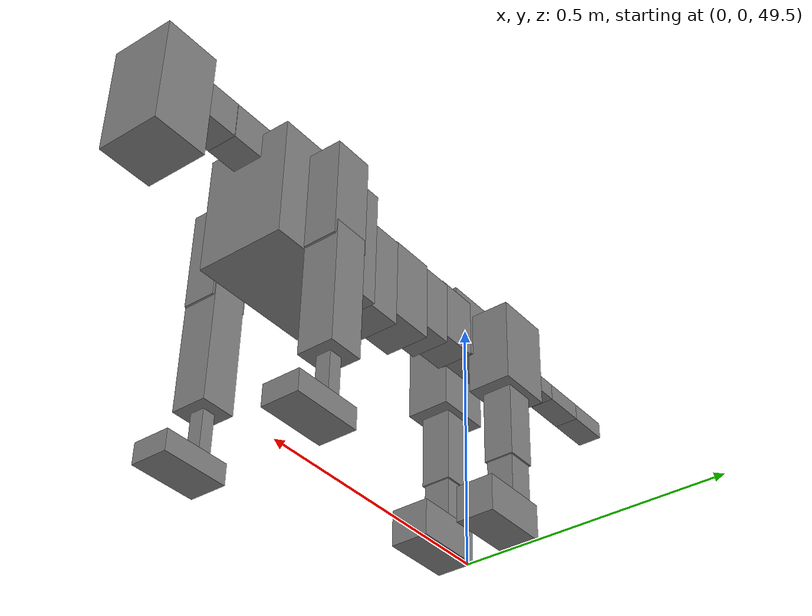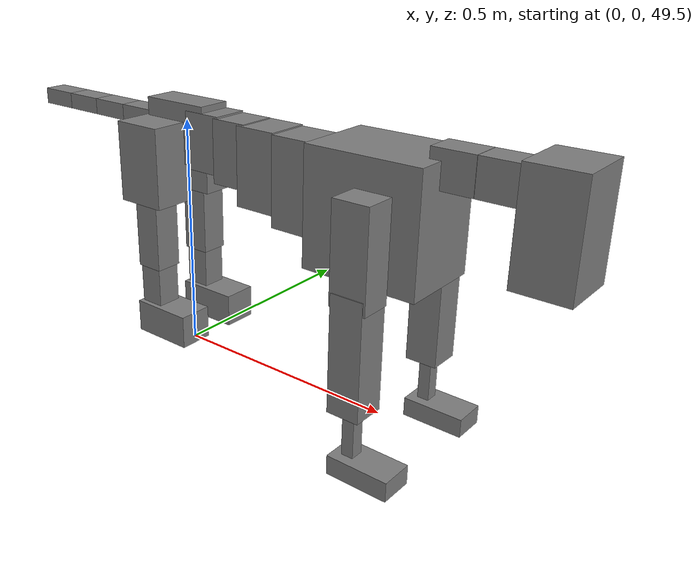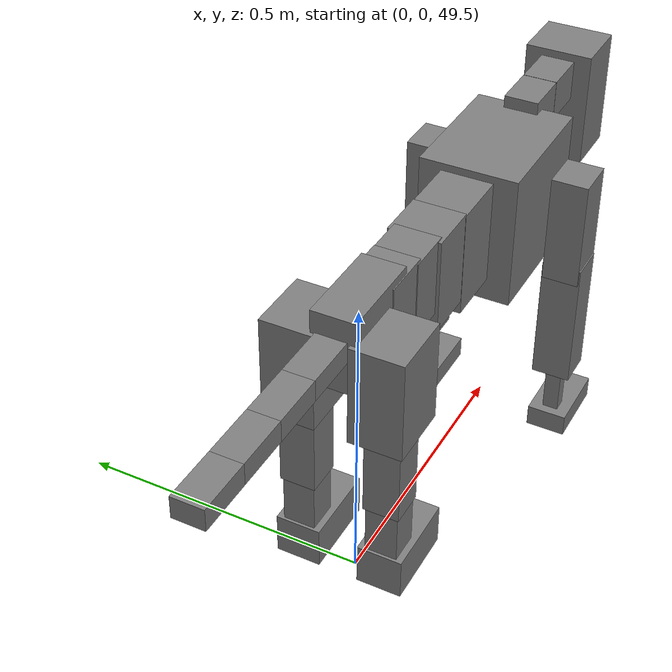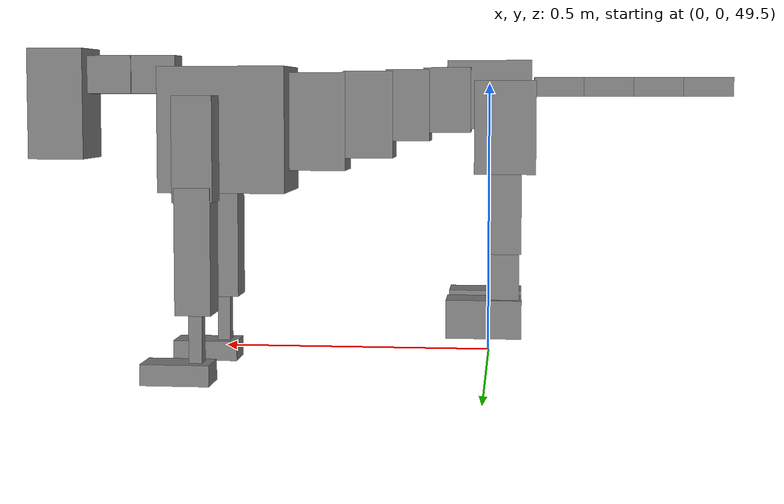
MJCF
<mujoco model="dog">

    <default>
        <joint armature="0.02" stiffness="1" damping="0.2" limited="true"/>
        <geom condim="3" friction="1 0.05 0.05" margin="0.01"/>
        <motor ctrllimited="true" ctrlrange="-1.0 1.0" forcelimited="true" gear="50"/>
    </default>

    <compiler inertiafromgeom="true" angle="radian"/>

    <option timestep="0.016" iterations="50" tolerance="1e-10" solver="Newton" jacobian="dense" cone="pyramidal"/>

    <size nconmax="20000" njmax="60000" nstack="5000000"/>
    <visual>
        <map force="0.1" zfar="30"/>
        <rgba haze="0.15 0.25 0.35 1"/>
        <quality shadowsize="2048"/>
        <global offwidth="800" offheight="800"/>
    </visual>

    <asset>
        <texture type="skybox" builtin="gradient" rgb1="0.3 0.5 0.7" rgb2="0 0 0" width="512" height="512"/>
        <texture name="texplane" type="2d" builtin="checker" rgb1=".2 .3 .4" rgb2=".1 0.15 0.2" width="512" height="512"
                 mark="cross" markrgb=".8 .8 .8"/>
        <texture name="texgeom" type="cube" builtin="flat" mark="cross" width="127" height="1278" rgb1="0.8 0.6 0.4"
                 rgb2="0.8 0.6 0.4" markrgb="1 1 1" random="0.01"/>

        <material name="matplane" reflectance="0.3" texture="texplane" texrepeat="1 1" texuniform="true"/>
        <material name="matgeom" texture="texgeom" texuniform="true" rgba="0.8 0.6 .4 1"/>
    </asset>

    <worldbody>
        <geom name="floor" pos="0 0 0" size="0 0 .25" type="plane" material="matplane" condim="3"/>

        <light directional="false" diffuse=".2 .2 .2" specular="0 0 0" pos="0 0 5" dir="0 0 -1" castshadow="false"/>
        <light mode="targetbodycom" target="torso" directional="false" diffuse=".8 .8 .8" specular="0.3 0.3 0.3"
               pos="0 0 4.0" dir="0 0 -1"/>

        <body name="root" pos="0 0 50">
            <freejoint name="root_1"/>
            <geom type="box" pos="0 0 -0.02" size="0.0774  0.0358  0.063" density="2030"/>

            <body name="spine1" pos="0.054 0 0">
                <joint name="spine1_y" axis="0 1 0" range="0 0.7" limited="true"/>
                <geom type="box" pos="0.02375 0 -0.03" size="0.04375  0.0375  0.05985" density="2030"/>

                <body name="spine2" pos="0.0612 0 0">
                    <joint name="spine2_y" axis="0 1 0" range="-0.15 0.15" limited="true"/>
                    <geom type="box" pos="0.03555  0  -0.04" size="0.04055  0.039  0.06615" density="2030"/>

                    <body name="spine3" pos="0.0730 0 0">
                        <joint name="spine3_y" axis="0 1 0" range="-0.15 0.15" limited="true"/>
                        <geom type="box" pos="0.03555  0  -0.057" size="0.04555  0.0445  0.081" density="2030"/>

                        <body name="spine4" pos="0.0780 0 0">
                            <joint name="spine4_y" axis="0 1 0" range="-0.15 0.15" limited="true"/>
                            <geom type="box" pos="0.05265  0  -0.07" size="0.05265  0.045  0.09135" density="2030"/>

                            <body name="torso" pos="0.1082 0 0">
                                <joint name="torso_y" axis="0 1 0" range="-0.15 0.15" limited="true"/>
                                <geom type="box" pos="0.11925  0  -0.085" size="0.11925  0.085  0.11745"
                                      density="2030"/>

                                <body name="neck1" pos="0.2160  0   0.0180">
                                    <joint name="neck1_y" axis="0 1 0" range="-1.2  -1" limited="true"/>
                                    <geom type="box" pos="0.0423  0  0" size="0.0423  0.03  0.036" density="2325"/>

                                    <body name="neck2" pos="0.0853  0  0">
                                        <joint name="neck2_y" axis="0 1 0" range="0.1  0" limited="true"/>
                                        <geom type="box" pos="0.0423  0  0" size="0.0423  0.03  0.036" density="2325"/>

                                        <body name="head" pos="0.0853  0  0">
                                            <joint name="head_y" axis="0 1 0" range="-0.3  -0.2" limited="true"/>
                                            <geom type="box" pos="0.0531  0  -0.055" size="0.0531  0.06  0.1044"
                                                  density="4030"/>

                                        </body>
                                    </body>
                                </body>

                                <body name="front_shoulder" pos="0.156  0   -0.0480">
                                    <joint name="front_shoulder_y" axis="0 1 0" range="-1 1.5" limited="true"/>
                                    <geom type="box" pos="0 0.13 -0.0699" size="0.0371  0.0317  0.0965" density="1158"/>
                                    <geom type="box" pos="0 -0.13 -0.0699" size="0.0371  0.0317  0.0965"
                                          density="1158"/>

                                    <body name="front_elbow" pos="0  0  -0.1398">
                                        <joint name="front_elbow_y" axis="0 1 0" range="-2 0" limited="true"/>
                                        <geom type="box" pos="0 0.13 -0.1161" size="0.0331  0.0338  0.1161"
                                              density="1081"/>
                                        <geom type="box" pos="0 -0.13 -0.1161" size="0.0331  0.0338  0.1161"
                                              density="1081"/>

                                        <body name="front_wrist" pos="0  0  -0.2322">
                                            <joint name="front_wrist_y" axis="0 1 0" range="-0.2 0" limited="true"/>
                                            <geom type="box" pos="0 0.13 -0.0524" size="0.0124  0.0138  0.0656"
                                                  density="1664"/>
                                            <geom type="box" pos="0 -0.13 -0.0524" size="0.0124  0.0138  0.0656"
                                                  density="1664"/>

                                            <body name="front_finger_end" pos="0  0  -0.1049">
                                                <joint name="front_finger_y" axis="0 1 0" range="-0.4 1"
                                                       limited="true"/>
                                                <geom type="box" pos="0.0349  0.13  -0.0046"
                                                      size="0.0641  0.0349  0.0196" density="1515"/>
                                                <geom type="box" pos="0.0349  -0.13  -0.0046"
                                                      size="0.0641  0.0349  0.0196" density="1515"/>

                                            </body>

                                        </body>
                                    </body>
                                </body>

                            </body>
                        </body>
                    </body>
                </body>
            </body>

            <body name="back_hip" pos="-0.03 0 -0.018">
                <joint name="back_hip_y" axis="0 1 0" range="-1.5 0.3" limited="true"/>
                <geom type="box" pos="0 0.07 -0.0613" size="0.0551  0.0432  0.0841" density="1154"/>
                <geom type="box" pos="0 -0.07 -0.0613" size="0.0551  0.0432  0.0841" density="1154"/>

                <body name="back_knee" pos="0  0  -0.1227">
                    <joint name="back_knee_y" axis="0 1 0" range="0 2.8" limited="true"/>
                    <geom type="box" pos="0 0.07 -0.0763" size="0.0299  0.0294  0.0918" density="1227"/>
                    <geom type="box" pos="0 -0.07 -0.0763" size="0.0299  0.0294  0.0918" density="1227"/>

                    <body name="back_ankle" pos="0  0  -0.1525">
                        <joint name="back_ankle_y" axis="0 1 0" range="-2.2 0" limited="true"/>
                        <geom type="box" pos="0 0.07 -0.0571" size="0.0264  0.0264  0.0683" density="1284"/>
                        <geom type="box" pos="0 -0.07 -0.0571" size="0.0264  0.0264  0.0683" density="1284"/>

                        <body name="back_toe_end" pos="0  0  -0.1141">
                            <joint name="back_toe_y" axis="0 1 0" range="-0.4 1" limited="true"/>
                            <geom type="box" pos="0.0372  0.07  -0.0200" size="0.0683  0.0372  0.0350" density="1515"/>
                            <geom type="box" pos="0.0372  -0.07  -0.0200" size="0.0683  0.0372  0.0350" density="1515"/>

                        </body>
                    </body>
                </body>
            </body>

            <body name="tail1" pos="-0.074 0 -0.006">
                <joint name="tail1_y" axis="0 1 0" range="-0.2 0.2" limited="true"/>
                <geom type="box" pos="-0.0536  0  0" size="0.045  0.025  0.0175" density="1587"/>

                <body name="tail2" pos="-0.09 0 0">
                    <joint name="tail2_y" axis="0 1 0" range="-0.2 0.2" limited="true"/>
                    <geom type="box" pos="-0.0536  0  0" size="0.045  0.025  0.0175" density="1587"/>

                    <body name="tail3" pos="-0.09 0 0">
                        <joint name="tail3_y" axis="0 1 0" range="-0.2 0.2" limited="true"/>
                        <geom type="box" pos="-0.0536  0  0" size="0.045  0.025  0.0175" density="1587"/>

                        <body name="tail4" pos="-0.09 0 0">
                            <joint name="tail4_y" axis="0 1 0" range="-0.2 0.2" limited="true"/>
                            <geom type="box" pos="-0.0536  0  0" size="0.045  0.025  0.0175" density="1587"/>

                        </body>
                    </body>
                </body>
            </body>
        </body>
    </worldbody>

    <actuator>
        <motor joint="spine1_y" forcerange="-150 150     "/>
        <motor joint="spine2_y" forcerange="-150 150     "/>
        <motor joint="spine3_y" forcerange="-150 150     "/>
        <motor joint="spine4_y" forcerange="-150 150     "/>
        <motor joint="torso_y" forcerange="-150 150     "/>
        <motor joint="neck1_y" forcerange="-100 100       "/>
        <motor joint="neck2_y" forcerange="-100 100       "/>
        <motor joint="head_y" forcerange="-150 150       "/>
        <motor joint="front_shoulder_y" forcerange="-172.25 138.92"/>
        <motor joint="front_elbow_y" forcerange="-158.86 186.91"/>
        <motor joint="front_wrist_y" forcerange="-50.97 59.55"/>
        <motor joint="front_finger_y" forcerange="-90.88 55.45"/>
        <motor joint="back_hip_y" forcerange="-396.81 379.49"/>
        <motor joint="back_knee_y" forcerange="-234.80 393.46"/>
        <motor joint="back_angle_y" forcerange="-105.79 216.67"/>
        <motor joint="back_toe_y" forcerange="-78.57 139.30"/>
        <motor joint="tail1_y" forcerange="-50 50     "/>
        <motor joint="tail2_y" forcerange="-50 50     "/>
        <motor joint="tail3_y" forcerange="-50 50     "/>
        <motor joint="tail4_y" forcerange="-50 50     "/>
    </actuator>
</mujoco>
